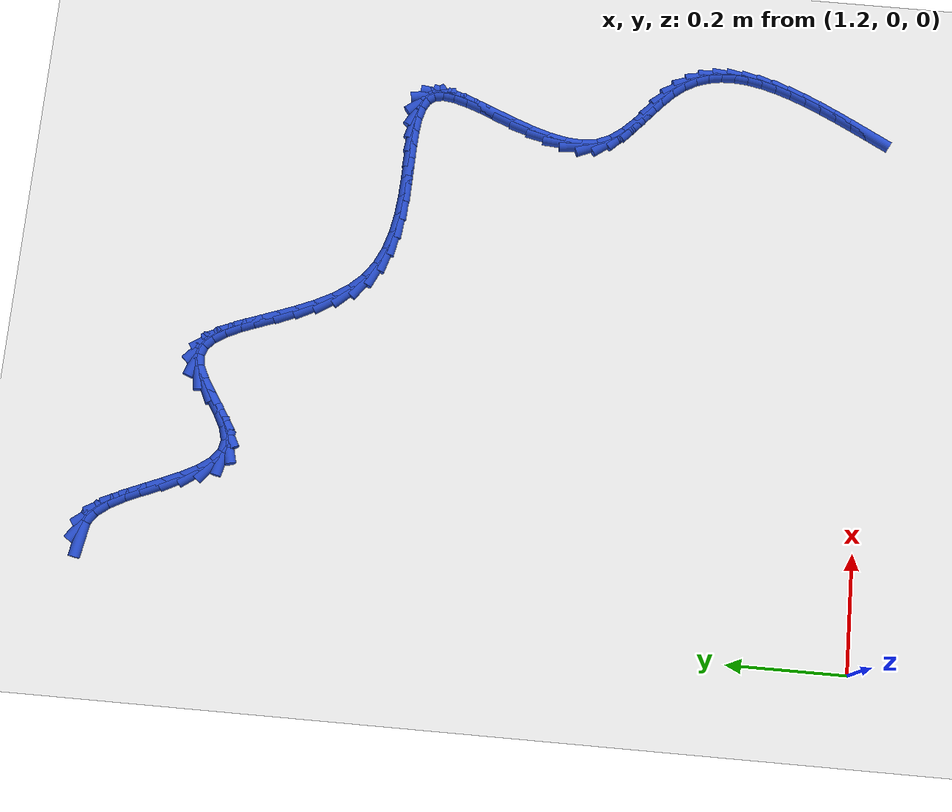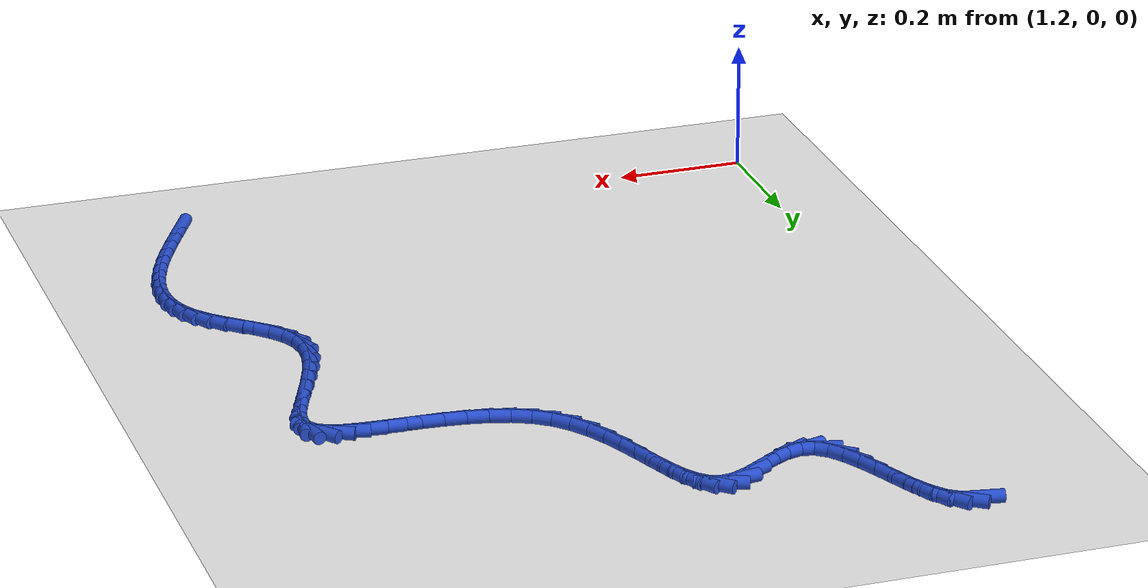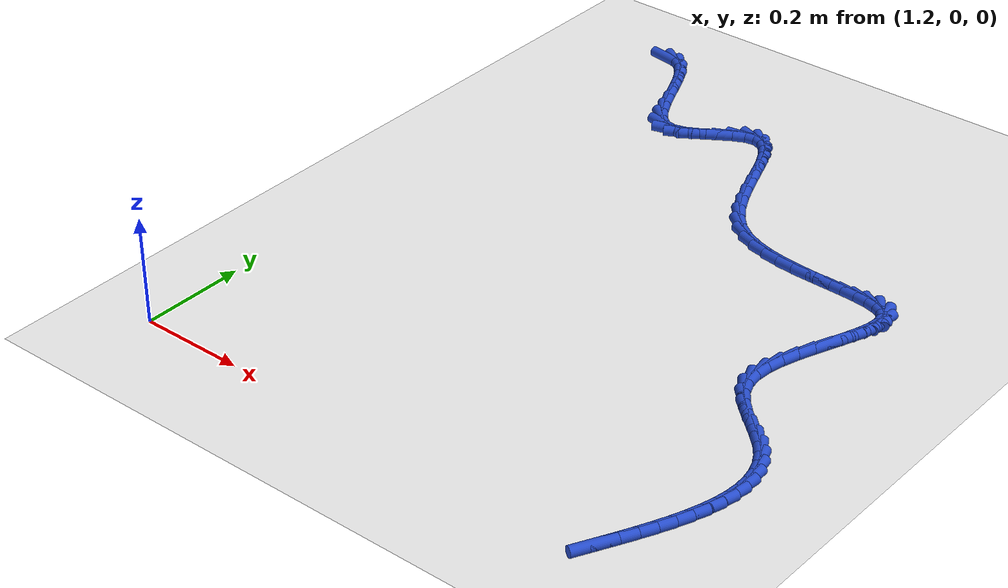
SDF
<sdf version="1.6">
 <world name="default">
  <model name="ground_plane">
   <static>1</static>
   <link name="link">
    <collision name="collision">
     <geometry><plane><normal>0 0 1</normal><size>100 100</size></plane></geometry>
     <surface><friction><ode><mu>100</mu><mu2>50</mu2></ode></friction></surface>
    </collision>
    <visual name="visual">
     <cast_shadows>0</cast_shadows>
     <geometry><plane><normal>0 0 1</normal><size>100 100</size></plane></geometry>
     <material>
      <script><uri>file://media/materials/scripts/gazebo.material</uri><name>Gazebo/WhiteGlow</name></script>
     </material>
    </visual>
   </link>
  </model>
  <model name="line">
   <link name="link_73">
    <pose>1.3183437824131954 1.2755102226449153 0.01 0 1.57 -0.16684510871647665</pose>
    <collision name="collision">
     <geometry><cylinder><radius>0.01</radius><length>0.08</length></cylinder></geometry>
    </collision>
    <visual name="visual">
     <material>
      <script><name>Gazebo/Blue</name><uri>file://media/materials/scripts/gazebo.material</uri></script>
     </material>
     <geometry><cylinder><radius>0.01</radius><length>0.08</length></cylinder></geometry>
    </visual>
   </link>
   <link name="link_74">
    <pose>1.3390339381723653 1.2720257787026057 0.01 0 1.57 -0.6121286195524225</pose>
    <collision name="collision">
     <geometry><cylinder><radius>0.01</radius><length>0.08</length></cylinder></geometry>
    </collision>
    <visual name="visual">
     <material>
      <script><name>Gazebo/Blue</name><uri>file://media/materials/scripts/gazebo.material</uri></script>
     </material>
     <geometry><cylinder><radius>0.01</radius><length>0.08</length></cylinder></geometry>
    </visual>
   </link>
   <link name="link_75">
    <pose>1.3571727798325206 1.2592906428728836 0.01 0 1.57 -0.9138117562290242</pose>
    <collision name="collision">
     <geometry><cylinder><radius>0.01</radius><length>0.08</length></cylinder></geometry>
    </collision>
    <visual name="visual">
     <material>
      <script><name>Gazebo/Blue</name><uri>file://media/materials/scripts/gazebo.material</uri></script>
     </material>
     <geometry><cylinder><radius>0.01</radius><length>0.08</length></cylinder></geometry>
    </visual>
   </link>
   <link name="link_76">
    <pose>1.3731096098489304 1.2386279285834996 0.01 0 1.57 -1.072491133559265</pose>
    <collision name="collision">
     <geometry><cylinder><radius>0.01</radius><length>0.08</length></cylinder></geometry>
    </collision>
    <visual name="visual">
     <material>
      <script><name>Gazebo/Blue</name><uri>file://media/materials/scripts/gazebo.material</uri></script>
     </material>
     <geometry><cylinder><radius>0.01</radius><length>0.08</length></cylinder></geometry>
    </visual>
   </link>
   <link name="link_77">
    <pose>1.3874601696492381 1.212253260804132 0.01 0 1.57 -1.1496458569841599</pose>
    <collision name="collision">
     <geometry><cylinder><radius>0.01</radius><length>0.08</length></cylinder></geometry>
    </collision>
    <visual name="visual">
     <material>
      <script><name>Gazebo/Blue</name><uri>file://media/materials/scripts/gazebo.material</uri></script>
     </material>
     <geometry><cylinder><radius>0.01</radius><length>0.08</length></cylinder></geometry>
    </visual>
   </link>
   <link name="link_78">
    <pose>1.4008405110723907 1.1823833043135696 0.01 0 1.57 -1.174703821423073</pose>
    <collision name="collision">
     <geometry><cylinder><radius>0.01</radius><length>0.08</length></cylinder></geometry>
    </collision>
    <visual name="visual">
     <material>
      <script><name>Gazebo/Blue</name><uri>file://media/materials/scripts/gazebo.material</uri></script>
     </material>
     <geometry><cylinder><radius>0.01</radius><length>0.08</length></cylinder></geometry>
    </visual>
   </link>
   <link name="link_79">
    <pose>1.413866685957333 1.1512347238905993 0.01 0 1.57 -1.156416395430086</pose>
    <collision name="collision">
     <geometry><cylinder><radius>0.01</radius><length>0.08</length></cylinder></geometry>
    </collision>
    <visual name="visual">
     <material>
      <script><name>Gazebo/Blue</name><uri>file://media/materials/scripts/gazebo.material</uri></script>
     </material>
     <geometry><cylinder><radius>0.01</radius><length>0.08</length></cylinder></geometry>
    </visual>
   </link>
   <link name="link_80">
    <pose>1.427154746143012 1.1210241843140096 0.01 0 1.57 -1.088460144894339</pose>
    <collision name="collision">
     <geometry><cylinder><radius>0.01</radius><length>0.08</length></cylinder></geometry>
    </collision>
    <visual name="visual">
     <material>
      <script><name>Gazebo/Blue</name><uri>file://media/materials/scripts/gazebo.material</uri></script>
     </material>
     <geometry><cylinder><radius>0.01</radius><length>0.08</length></cylinder></geometry>
    </visual>
   </link>
   <link name="link_81">
    <pose>1.4413207434683741 1.0939683503625885 0.01 0 1.57 -0.9453420537556867</pose>
    <collision name="collision">
     <geometry><cylinder><radius>0.01</radius><length>0.08</length></cylinder></geometry>
    </collision>
    <visual name="visual">
     <material>
      <script><name>Gazebo/Blue</name><uri>file://media/materials/scripts/gazebo.material</uri></script>
     </material>
     <geometry><cylinder><radius>0.01</radius><length>0.08</length></cylinder></geometry>
    </visual>
   </link>
   <link name="link_82">
    <pose>1.4569807297723654 1.0722838868151239 0.01 0 1.57 -0.6706237542996235</pose>
    <collision name="collision">
     <geometry><cylinder><radius>0.01</radius><length>0.08</length></cylinder></geometry>
    </collision>
    <visual name="visual">
     <material>
      <script><name>Gazebo/Blue</name><uri>file://media/materials/scripts/gazebo.material</uri></script>
     </material>
     <geometry><cylinder><radius>0.01</radius><length>0.08</length></cylinder></geometry>
    </visual>
   </link>
   <link name="link_83">
    <pose>1.4747507568939318 1.058187458450403 0.01 0 1.57 -0.206528503183138</pose>
    <collision name="collision">
     <geometry><cylinder><radius>0.01</radius><length>0.08</length></cylinder></geometry>
    </collision>
    <visual name="visual">
     <material>
      <script><name>Gazebo/Blue</name><uri>file://media/materials/scripts/gazebo.material</uri></script>
     </material>
     <geometry><cylinder><radius>0.01</radius><length>0.08</length></cylinder></geometry>
    </visual>
   </link>
   <link name="link_84">
    <pose>1.4952461561955788 1.0538933462703965 0.01 0 1.57 0.2603680566363444</pose>
    <collision name="collision">
     <geometry><cylinder><radius>0.01</radius><length>0.08</length></cylinder></geometry>
    </collision>
    <visual name="visual">
     <material>
      <script><name>Gazebo/Blue</name><uri>file://media/materials/scripts/gazebo.material</uri></script>
     </material>
     <geometry><cylinder><radius>0.01</radius><length>0.08</length></cylinder></geometry>
    </visual>
   </link>
   <link name="link_85">
    <pose>1.518631212050192 1.0601234919073614 0.01 0 1.57 0.4895556634043812</pose>
    <collision name="collision">
     <geometry><cylinder><radius>0.01</radius><length>0.08</length></cylinder></geometry>
    </collision>
    <visual name="visual">
     <material>
      <script><name>Gazebo/Blue</name><uri>file://media/materials/scripts/gazebo.material</uri></script>
     </material>
     <geometry><cylinder><radius>0.01</radius><length>0.08</length></cylinder></geometry>
    </visual>
   </link>
   <link name="link_86">
    <pose>1.5438492306699918 1.0735600943045391 0.01 0 1.57 0.573235820004116</pose>
    <collision name="collision">
     <geometry><cylinder><radius>0.01</radius><length>0.08</length></cylinder></geometry>
    </collision>
    <visual name="visual">
     <material>
      <script><name>Gazebo/Blue</name><uri>file://media/materials/scripts/gazebo.material</uri></script>
     </material>
     <geometry><cylinder><radius>0.01</radius><length>0.08</length></cylinder></geometry>
    </visual>
   </link>
   <link name="link_87">
    <pose>1.5696389345823032 1.09020846442144 0.01 0 1.57 0.5636792029933443</pose>
    <collision name="collision">
     <geometry><cylinder><radius>0.01</radius><length>0.08</length></cylinder></geometry>
    </collision>
    <visual name="visual">
     <material>
      <script><name>Gazebo/Blue</name><uri>file://media/materials/scripts/gazebo.material</uri></script>
     </material>
     <geometry><cylinder><radius>0.01</radius><length>0.08</length></cylinder></geometry>
    </visual>
   </link>
   <link name="link_88">
    <pose>1.5947390463144504 1.1060739132175754 0.01 0 1.57 0.44668412746929764</pose>
    <collision name="collision">
     <geometry><cylinder><radius>0.01</radius><length>0.08</length></cylinder></geometry>
    </collision>
    <visual name="visual">
     <material>
      <script><name>Gazebo/Blue</name><uri>file://media/materials/scripts/gazebo.material</uri></script>
     </material>
     <geometry><cylinder><radius>0.01</radius><length>0.08</length></cylinder></geometry>
    </visual>
   </link>
   <link name="link_89">
    <pose>1.6178882883937573 1.1171617516524555 0.01 0 1.57 0.1326840757271206</pose>
    <collision name="collision">
     <geometry><cylinder><radius>0.01</radius><length>0.08</length></cylinder></geometry>
    </collision>
    <visual name="visual">
     <material>
      <script><name>Gazebo/Blue</name><uri>file://media/materials/scripts/gazebo.material</uri></script>
     </material>
     <geometry><cylinder><radius>0.01</radius><length>0.08</length></cylinder></geometry>
    </visual>
   </link>
   <link name="link_90">
    <pose>1.6379555032477173 1.1198400874099368 0.01 0 1.57 -0.34634341337419294</pose>
    <collision name="collision">
     <geometry><cylinder><radius>0.01</radius><length>0.08</length></cylinder></geometry>
    </collision>
    <visual name="visual">
     <material>
      <script><name>Gazebo/Blue</name><uri>file://media/materials/scripts/gazebo.material</uri></script>
     </material>
     <geometry><cylinder><radius>0.01</radius><length>0.08</length></cylinder></geometry>
    </visual>
   </link>
   <link name="link_91">
    <pose>1.654965907668562 1.1137011993506476 0.01 0 1.57 -0.7532300992540406</pose>
    <collision name="collision">
     <geometry><cylinder><radius>0.01</radius><length>0.08</length></cylinder></geometry>
    </collision>
    <visual name="visual">
     <material>
      <script><name>Gazebo/Blue</name><uri>file://media/materials/scripts/gazebo.material</uri></script>
     </material>
     <geometry><cylinder><radius>0.01</radius><length>0.08</length></cylinder></geometry>
    </visual>
   </link>
   <link name="link_92">
    <pose>1.6695503910930276 1.1000260861326376 0.01 0 1.57 -0.9997450391108397</pose>
    <collision name="collision">
     <geometry><cylinder><radius>0.01</radius><length>0.08</length></cylinder></geometry>
    </collision>
    <visual name="visual">
     <material>
      <script><name>Gazebo/Blue</name><uri>file://media/materials/scripts/gazebo.material</uri></script>
     </material>
     <geometry><cylinder><radius>0.01</radius><length>0.08</length></cylinder></geometry>
    </visual>
   </link>
   <link name="link_93">
    <pose>1.6823451630224993 1.0801105796717854 0.01 0 1.57 -1.1328518529992782</pose>
    <collision name="collision">
     <geometry><cylinder><radius>0.01</radius><length>0.08</length></cylinder></geometry>
    </collision>
    <visual name="visual">
     <material>
      <script><name>Gazebo/Blue</name><uri>file://media/materials/scripts/gazebo.material</uri></script>
     </material>
     <geometry><cylinder><radius>0.01</radius><length>0.08</length></cylinder></geometry>
    </visual>
   </link>
   <link name="link_94">
    <pose>1.6939864329583612 1.0552505118839688 0.01 0 1.57 -1.1987713939651214</pose>
    <collision name="collision">
     <geometry><cylinder><radius>0.01</radius><length>0.08</length></cylinder></geometry>
    </collision>
    <visual name="visual">
     <material>
      <script><name>Gazebo/Blue</name><uri>file://media/materials/scripts/gazebo.material</uri></script>
     </material>
     <geometry><cylinder><radius>0.01</radius><length>0.08</length></cylinder></geometry>
    </visual>
   </link>
   <link name="link_95">
    <pose>1.7051104104019994 1.0267417146850681 0.01 0 1.57 -1.2214399153551372</pose>
    <collision name="collision">
     <geometry><cylinder><radius>0.01</radius><length>0.08</length></cylinder></geometry>
    </collision>
    <visual name="visual">
     <material>
      <script><name>Gazebo/Blue</name><uri>file://media/materials/scripts/gazebo.material</uri></script>
     </material>
     <geometry><cylinder><radius>0.01</radius><length>0.08</length></cylinder></geometry>
    </visual>
   </link>
   <link name="link_96">
    <pose>1.7163533048547979 0.9958800199909618 0.01 0 1.57 -1.2112434652779007</pose>
    <collision name="collision">
     <geometry><cylinder><radius>0.01</radius><length>0.08</length></cylinder></geometry>
    </collision>
    <visual name="visual">
     <material>
      <script><name>Gazebo/Blue</name><uri>file://media/materials/scripts/gazebo.material</uri></script>
     </material>
     <geometry><cylinder><radius>0.01</radius><length>0.08</length></cylinder></geometry>
    </visual>
   </link>
   <link name="link_97">
    <pose>1.7283513258181418 0.9639612597175287 0.01 0 1.57 -1.170922987585926</pose>
    <collision name="collision">
     <geometry><cylinder><radius>0.01</radius><length>0.08</length></cylinder></geometry>
    </collision>
    <visual name="visual">
     <material>
      <script><name>Gazebo/Blue</name><uri>file://media/materials/scripts/gazebo.material</uri></script>
     </material>
     <geometry><cylinder><radius>0.01</radius><length>0.08</length></cylinder></geometry>
    </visual>
   </link>
   <link name="link_98">
    <pose>1.7417406827934168 0.9322812657806477 0.01 0 1.57 -1.0980559785298039</pose>
    <collision name="collision">
     <geometry><cylinder><radius>0.01</radius><length>0.08</length></cylinder></geometry>
    </collision>
    <visual name="visual">
     <material>
      <script><name>Gazebo/Blue</name><uri>file://media/materials/scripts/gazebo.material</uri></script>
     </material>
     <geometry><cylinder><radius>0.01</radius><length>0.08</length></cylinder></geometry>
    </visual>
   </link>
   <link name="link_99">
    <pose>1.7571575852820072 0.902135870096198 0.01 0 1.57 -0.9860785388547416</pose>
    <collision name="collision">
     <geometry><cylinder><radius>0.01</radius><length>0.08</length></cylinder></geometry>
    </collision>
    <visual name="visual">
     <material>
      <script><name>Gazebo/Blue</name><uri>file://media/materials/scripts/gazebo.material</uri></script>
     </material>
     <geometry><cylinder><radius>0.01</radius><length>0.08</length></cylinder></geometry>
    </visual>
   </link>
   <link name="link_100">
    <pose>1.7752382427852975 0.8748209045800582 0.01 0 1.57 -0.8259437738433045</pose>
    <collision name="collision">
     <geometry><cylinder><radius>0.01</radius><length>0.08</length></cylinder></geometry>
    </collision>
    <visual name="visual">
     <material>
      <script><name>Gazebo/Blue</name><uri>file://media/materials/scripts/gazebo.material</uri></script>
     </material>
     <geometry><cylinder><radius>0.01</radius><length>0.08</length></cylinder></geometry>
    </visual>
   </link>
   <link name="link_101">
    <pose>1.7966188648046733 0.8516322011481078 0.01 0 1.57 -0.6222377164694277</pose>
    <collision name="collision">
     <geometry><cylinder><radius>0.01</radius><length>0.08</length></cylinder></geometry>
    </collision>
    <visual name="visual">
     <material>
      <script><name>Gazebo/Blue</name><uri>file://media/materials/scripts/gazebo.material</uri></script>
     </material>
     <geometry><cylinder><radius>0.01</radius><length>0.08</length></cylinder></geometry>
    </visual>
   </link>
   <link name="link_102">
    <pose>1.8217521417594094 0.8336042870130349 0.01 0 1.57 -0.4356061004534389</pose>
    <collision name="collision">
     <geometry><cylinder><radius>0.01</radius><length>0.08</length></cylinder></geometry>
    </collision>
    <visual name="visual">
     <material>
      <script><name>Gazebo/Blue</name><uri>file://media/materials/scripts/gazebo.material</uri></script>
     </material>
     <geometry><cylinder><radius>0.01</radius><length>0.08</length></cylinder></geometry>
    </visual>
   </link>
   <link name="link_103">
    <pose>1.85012621838497 0.8203983154542901 0.01 0 1.57 -0.2895581876682245</pose>
    <collision name="collision">
     <geometry><cylinder><radius>0.01</radius><length>0.08</length></cylinder></geometry>
    </collision>
    <visual name="visual">
     <material>
      <script><name>Gazebo/Blue</name><uri>file://media/materials/scripts/gazebo.material</uri></script>
     </material>
     <geometry><cylinder><radius>0.01</radius><length>0.08</length></cylinder></geometry>
    </visual>
   </link>
   <link name="link_104">
    <pose>1.8809134629001072 0.8112258195373112 0.01 0 1.57 -0.18110365951941726</pose>
    <collision name="collision">
     <geometry><cylinder><radius>0.01</radius><length>0.08</length></cylinder></geometry>
    </collision>
    <visual name="visual">
     <material>
      <script><name>Gazebo/Blue</name><uri>file://media/materials/scripts/gazebo.material</uri></script>
     </material>
     <geometry><cylinder><radius>0.01</radius><length>0.08</length></cylinder></geometry>
    </visual>
   </link>
   <link name="link_105">
    <pose>1.9132860621466303 0.805298074072932 0.01 0 1.57 -0.104409323608136</pose>
    <collision name="collision">
     <geometry><cylinder><radius>0.01</radius><length>0.08</length></cylinder></geometry>
    </collision>
    <visual name="visual">
     <material>
      <script><name>Gazebo/Blue</name><uri>file://media/materials/scripts/gazebo.material</uri></script>
     </material>
     <geometry><cylinder><radius>0.01</radius><length>0.08</length></cylinder></geometry>
    </visual>
   </link>
   <link name="link_106">
    <pose>1.9464162029663516 0.801826353871986 0.01 0 1.57 -0.05452627504415053</pose>
    <collision name="collision">
     <geometry><cylinder><radius>0.01</radius><length>0.08</length></cylinder></geometry>
    </collision>
    <visual name="visual">
     <material>
      <script><name>Gazebo/Blue</name><uri>file://media/materials/scripts/gazebo.material</uri></script>
     </material>
     <geometry><cylinder><radius>0.01</radius><length>0.08</length></cylinder></geometry>
    </visual>
   </link>
   <link name="link_107">
    <pose>1.9794760722010822 0.8000219337453077 0.01 0 1.57 -0.028779174864250887</pose>
    <collision name="collision">
     <geometry><cylinder><radius>0.01</radius><length>0.08</length></cylinder></geometry>
    </collision>
    <visual name="visual">
     <material>
      <script><name>Gazebo/Blue</name><uri>file://media/materials/scripts/gazebo.material</uri></script>
     </material>
     <geometry><cylinder><radius>0.01</radius><length>0.08</length></cylinder></geometry>
    </visual>
   </link>
   <link name="link_108">
    <pose>2.0116378566926305 0.7990960885037305 0.01 0 1.57 -0.02746052416291596</pose>
    <collision name="collision">
     <geometry><cylinder><radius>0.01</radius><length>0.08</length></cylinder></geometry>
    </collision>
    <visual name="visual">
     <material>
      <script><name>Gazebo/Blue</name><uri>file://media/materials/scripts/gazebo.material</uri></script>
     </material>
     <geometry><cylinder><radius>0.01</radius><length>0.08</length></cylinder></geometry>
    </visual>
   </link>
   <link name="link_109">
    <pose>2.04207374328281 0.7982600929580881 0.01 0 1.57 -0.0549929634972766</pose>
    <collision name="collision">
     <geometry><cylinder><radius>0.01</radius><length>0.08</length></cylinder></geometry>
    </collision>
    <visual name="visual">
     <material>
      <script><name>Gazebo/Blue</name><uri>file://media/materials/scripts/gazebo.material</uri></script>
     </material>
     <geometry><cylinder><radius>0.01</radius><length>0.08</length></cylinder></geometry>
    </visual>
   </link>
   <link name="link_110">
    <pose>2.06995591881343 0.7967252219192145 0.01 0 1.57 -0.12274277025162612</pose>
    <collision name="collision">
     <geometry><cylinder><radius>0.01</radius><length>0.08</length></cylinder></geometry>
    </collision>
    <visual name="visual">
     <material>
      <script><name>Gazebo/Blue</name><uri>file://media/materials/scripts/gazebo.material</uri></script>
     </material>
     <geometry><cylinder><radius>0.01</radius><length>0.08</length></cylinder></geometry>
    </visual>
   </link>
   <link name="link_111">
    <pose>2.094456570126302 0.7937027501979432 0.01 0 1.57 -0.2554320651588414</pose>
    <collision name="collision">
     <geometry><cylinder><radius>0.01</radius><length>0.08</length></cylinder></geometry>
    </collision>
    <visual name="visual">
     <material>
      <script><name>Gazebo/Blue</name><uri>file://media/materials/scripts/gazebo.material</uri></script>
     </material>
     <geometry><cylinder><radius>0.01</radius><length>0.08</length></cylinder></geometry>
    </visual>
   </link>
   <link name="link_112">
    <pose>2.114747884063236 0.7884039526051085 0.01 0 1.57 -0.5015366310365025</pose>
    <collision name="collision">
     <geometry><cylinder><radius>0.01</radius><length>0.08</length></cylinder></geometry>
    </collision>
    <visual name="visual">
     <material>
      <script><name>Gazebo/Blue</name><uri>file://media/materials/scripts/gazebo.material</uri></script>
     </material>
     <geometry><cylinder><radius>0.01</radius><length>0.08</length></cylinder></geometry>
    </visual>
   </link>
   <link name="link_113">
    <pose>2.130002047466043 0.780040103951544 0.01 0 1.57 -0.9155622875768271</pose>
    <collision name="collision">
     <geometry><cylinder><radius>0.01</radius><length>0.08</length></cylinder></geometry>
    </collision>
    <visual name="visual">
     <material>
      <script><name>Gazebo/Blue</name><uri>file://media/materials/scripts/gazebo.material</uri></script>
     </material>
     <geometry><cylinder><radius>0.01</radius><length>0.08</length></cylinder></geometry>
    </visual>
   </link>
   <link name="link_114">
    <pose>2.1393912471765337 0.7678224790480833 0.01 0 1.57 -1.3902913847849792</pose>
    <collision name="collision">
     <geometry><cylinder><radius>0.01</radius><length>0.08</length></cylinder></geometry>
    </collision>
    <visual name="visual">
     <material>
      <script><name>Gazebo/Blue</name><uri>file://media/materials/scripts/gazebo.material</uri></script>
     </material>
     <geometry><cylinder><radius>0.01</radius><length>0.08</length></cylinder></geometry>
    </visual>
   </link>
   <link name="link_115">
    <pose>2.142424585156173 0.7512006510957169 0.01 0 1.57 1.452812598707228</pose>
    <collision name="collision">
     <geometry><cylinder><radius>0.01</radius><length>0.08</length></cylinder></geometry>
    </collision>
    <visual name="visual">
     <material>
      <script><name>Gazebo/Blue</name><uri>file://media/materials/scripts/gazebo.material</uri></script>
     </material>
     <geometry><cylinder><radius>0.01</radius><length>0.08</length></cylinder></geometry>
    </visual>
   </link>
   <link name="link_116">
    <pose>2.1399819619836 0.7305937523465017 0.01 0 1.57 1.298146527217197</pose>
    <collision name="collision">
     <geometry><cylinder><radius>0.01</radius><length>0.08</length></cylinder></geometry>
    </collision>
    <visual name="visual">
     <material>
      <script><name>Gazebo/Blue</name><uri>file://media/materials/scripts/gazebo.material</uri></script>
     </material>
     <geometry><cylinder><radius>0.01</radius><length>0.08</length></cylinder></geometry>
    </visual>
   </link>
   <link name="link_117">
    <pose>2.1332918613960032 0.7066674661885893 0.01 0 1.57 1.2205758915131604</pose>
    <collision name="collision">
     <geometry><cylinder><radius>0.01</radius><length>0.08</length></cylinder></geometry>
    </collision>
    <visual name="visual">
     <material>
      <script><name>Gazebo/Blue</name><uri>file://media/materials/scripts/gazebo.material</uri></script>
     </material>
     <geometry><cylinder><radius>0.01</radius><length>0.08</length></cylinder></geometry>
    </visual>
   </link>
   <link name="link_118">
    <pose>2.123582767193188 0.6800874760544177 0.01 0 1.57 1.1881071242338588</pose>
    <collision name="collision">
     <geometry><cylinder><radius>0.01</radius><length>0.08</length></cylinder></geometry>
    </collision>
    <visual name="visual">
     <material>
      <script><name>Gazebo/Blue</name><uri>file://media/materials/scripts/gazebo.material</uri></script>
     </material>
     <geometry><cylinder><radius>0.01</radius><length>0.08</length></cylinder></geometry>
    </visual>
   </link>
   <link name="link_119">
    <pose>2.112083163174957 0.6515194653764261 0.01 0 1.57 1.1872511885133374</pose>
    <collision name="collision">
     <geometry><cylinder><radius>0.01</radius><length>0.08</length></cylinder></geometry>
    </collision>
    <visual name="visual">
     <material>
      <script><name>Gazebo/Blue</name><uri>file://media/materials/scripts/gazebo.material</uri></script>
     </material>
     <geometry><cylinder><radius>0.01</radius><length>0.08</length></cylinder></geometry>
    </visual>
   </link>
   <link name="link_120">
    <pose>2.1000215331411143 0.6216291175870532 0.01 0 1.57 1.2137474518360485</pose>
    <collision name="collision">
     <geometry><cylinder><radius>0.01</radius><length>0.08</length></cylinder></geometry>
    </collision>
    <visual name="visual">
     <material>
      <script><name>Gazebo/Blue</name><uri>file://media/materials/scripts/gazebo.material</uri></script>
     </material>
     <geometry><cylinder><radius>0.01</radius><length>0.08</length></cylinder></geometry>
    </visual>
   </link>
   <link name="link_121">
    <pose>2.0886263608914653 0.5910821161187378 0.01 0 1.57 1.269191362193185</pose>
    <collision name="collision">
     <geometry><cylinder><radius>0.01</radius><length>0.08</length></cylinder></geometry>
    </collision>
    <visual name="visual">
     <material>
      <script><name>Gazebo/Blue</name><uri>file://media/materials/scripts/gazebo.material</uri></script>
     </material>
     <geometry><cylinder><radius>0.01</radius><length>0.08</length></cylinder></geometry>
    </visual>
   </link>
   <link name="link_122">
    <pose>2.0791261302258137 0.560544144403919 0.01 0 1.57 1.3604223212297881</pose>
    <collision name="collision">
     <geometry><cylinder><radius>0.01</radius><length>0.08</length></cylinder></geometry>
    </collision>
    <visual name="visual">
     <material>
      <script><name>Gazebo/Blue</name><uri>file://media/materials/scripts/gazebo.material</uri></script>
     </material>
     <geometry><cylinder><radius>0.01</radius><length>0.08</length></cylinder></geometry>
    </visual>
   </link>
   <link name="link_123">
    <pose>2.0727493249439646 0.5306808858750355 0.01 0 1.57 1.4999231929225816</pose>
    <collision name="collision">
     <geometry><cylinder><radius>0.01</radius><length>0.08</length></cylinder></geometry>
    </collision>
    <visual name="visual">
     <material>
      <script><name>Gazebo/Blue</name><uri>file://media/materials/scripts/gazebo.material</uri></script>
     </material>
     <geometry><cylinder><radius>0.01</radius><length>0.08</length></cylinder></geometry>
    </visual>
   </link>
   <link name="link_124">
    <pose>2.0707244288457205 0.5021580239645265 0.01 0 1.57 -1.4375065454873666</pose>
    <collision name="collision">
     <geometry><cylinder><radius>0.01</radius><length>0.08</length></cylinder></geometry>
    </collision>
    <visual name="visual">
     <material>
      <script><name>Gazebo/Blue</name><uri>file://media/materials/scripts/gazebo.material</uri></script>
     </material>
     <geometry><cylinder><radius>0.01</radius><length>0.08</length></cylinder></geometry>
    </visual>
   </link>
   <link name="link_125">
    <pose>2.074279925730887 0.4756412421048299 0.01 0 1.57 -1.1709242210565063</pose>
    <collision name="collision">
     <geometry><cylinder><radius>0.01</radius><length>0.08</length></cylinder></geometry>
    </collision>
    <visual name="visual">
     <material>
      <script><name>Gazebo/Blue</name><uri>file://media/materials/scripts/gazebo.material</uri></script>
     </material>
     <geometry><cylinder><radius>0.01</radius><length>0.08</length></cylinder></geometry>
    </visual>
   </link>
   <link name="link_126">
    <pose>2.084401230040343 0.4516935676426693 0.01 0 1.57 -0.9420755934616672</pose>
    <collision name="collision">
     <geometry><cylinder><radius>0.01</radius><length>0.08</length></cylinder></geometry>
    </collision>
    <visual name="visual">
     <material>
      <script><name>Gazebo/Blue</name><uri>file://media/materials/scripts/gazebo.material</uri></script>
     </material>
     <geometry><cylinder><radius>0.01</radius><length>0.08</length></cylinder></geometry>
    </visual>
   </link>
   <link name="link_127">
    <pose>2.100133313930665 0.4300585161181563 0.01 0 1.57 -0.7984092568251079</pose>
    <collision name="collision">
     <geometry><cylinder><radius>0.01</radius><length>0.08</length></cylinder></geometry>
    </collision>
    <visual name="visual">
     <material>
      <script><name>Gazebo/Blue</name><uri>file://media/materials/scripts/gazebo.material</uri></script>
     </material>
     <geometry><cylinder><radius>0.01</radius><length>0.08</length></cylinder></geometry>
    </visual>
   </link>
   <link name="link_128">
    <pose>2.1195917066347474 0.41008706913432474 0.01 0 1.57 -0.7274540353711207</pose>
    <collision name="collision">
     <geometry><cylinder><radius>0.01</radius><length>0.08</length></cylinder></geometry>
    </collision>
    <visual name="visual">
     <material>
      <script><name>Gazebo/Blue</name><uri>file://media/materials/scripts/gazebo.material</uri></script>
     </material>
     <geometry><cylinder><radius>0.01</radius><length>0.08</length></cylinder></geometry>
    </visual>
   </link>
   <link name="link_129">
    <pose>2.1408861096604017 0.39112774705660874 0.01 0 1.57 -0.7191918997910498</pose>
    <collision name="collision">
     <geometry><cylinder><radius>0.01</radius><length>0.08</length></cylinder></geometry>
    </collision>
    <visual name="visual">
     <material>
      <script><name>Gazebo/Blue</name><uri>file://media/materials/scripts/gazebo.material</uri></script>
     </material>
     <geometry><cylinder><radius>0.01</radius><length>0.08</length></cylinder></geometry>
    </visual>
   </link>
   <link name="link_130">
    <pose>2.162126224515439 0.3725290702504425 0.01 0 1.57 -0.7747656819414553</pose>
    <collision name="collision">
     <geometry><cylinder><radius>0.01</radius><length>0.08</length></cylinder></geometry>
    </collision>
    <visual name="visual">
     <material>
      <script><name>Gazebo/Blue</name><uri>file://media/materials/scripts/gazebo.material</uri></script>
     </material>
     <geometry><cylinder><radius>0.01</radius><length>0.08</length></cylinder></geometry>
    </visual>
   </link>
   <link name="link_131">
    <pose>2.181421752707672 0.3536395590812604 0.01 0 1.57 -0.903213475266581</pose>
    <collision name="collision">
     <geometry><cylinder><radius>0.01</radius><length>0.08</length></cylinder></geometry>
    </collision>
    <visual name="visual">
     <material>
      <script><name>Gazebo/Blue</name><uri>file://media/materials/scripts/gazebo.material</uri></script>
     </material>
     <geometry><cylinder><radius>0.01</radius><length>0.08</length></cylinder></geometry>
    </visual>
   </link>
   <link name="link_132">
    <pose>2.1970200262414723 0.33385301603945305 0.01 0 1.57 -1.0681966047662395</pose>
    <collision name="collision">
     <geometry><cylinder><radius>0.01</radius><length>0.08</length></cylinder></geometry>
    </collision>
    <visual name="visual">
     <material>
      <script><name>Gazebo/Blue</name><uri>file://media/materials/scripts/gazebo.material</uri></script>
     </material>
     <geometry><cylinder><radius>0.01</radius><length>0.08</length></cylinder></geometry>
    </visual>
   </link>
   <link name="link_133">
    <pose>2.208484606726856 0.31299629933317735 0.01 0 1.57 -1.2351392739128026</pose>
    <collision name="collision">
     <geometry><cylinder><radius>0.01</radius><length>0.08</length></cylinder></geometry>
    </collision>
    <visual name="visual">
     <material>
      <script><name>Gazebo/Blue</name><uri>file://media/materials/scripts/gazebo.material</uri></script>
     </material>
     <geometry><cylinder><radius>0.01</radius><length>0.08</length></cylinder></geometry>
    </visual>
   </link>
   <link name="link_134">
    <pose>2.2161104325672754 0.29113689912483165 0.01 0 1.57 -1.3932435516901798</pose>
    <collision name="collision">
     <geometry><cylinder><radius>0.01</radius><length>0.08</length></cylinder></geometry>
    </collision>
    <visual name="visual">
     <material>
      <script><name>Gazebo/Blue</name><uri>file://media/materials/scripts/gazebo.material</uri></script>
     </material>
     <geometry><cylinder><radius>0.01</radius><length>0.08</length></cylinder></geometry>
    </visual>
   </link>
   <link name="link_135">
    <pose>2.220200285826971 0.2683448862376202 0.01 0 1.57 -1.53459659597406</pose>
    <collision name="collision">
     <geometry><cylinder><radius>0.01</radius><length>0.08</length></cylinder></geometry>
    </collision>
    <visual name="visual">
     <material>
      <script><name>Gazebo/Blue</name><uri>file://media/materials/scripts/gazebo.material</uri></script>
     </material>
     <geometry><cylinder><radius>0.01</radius><length>0.08</length></cylinder></geometry>
    </visual>
   </link>
   <link name="link_136">
    <pose>2.2210569485701877 0.24469033149474723 0.01 0 1.57 1.4861728132409802</pose>
    <collision name="collision">
     <geometry><cylinder><radius>0.01</radius><length>0.08</length></cylinder></geometry>
    </collision>
    <visual name="visual">
     <material>
      <script><name>Gazebo/Blue</name><uri>file://media/materials/scripts/gazebo.material</uri></script>
     </material>
     <geometry><cylinder><radius>0.01</radius><length>0.08</length></cylinder></geometry>
    </visual>
   </link>
   <link name="link_137">
    <pose>2.2189832028611636 0.2202433057194164 0.01 0 1.57 1.3861353108180545</pose>
    <collision name="collision">
     <geometry><cylinder><radius>0.01</radius><length>0.08</length></cylinder></geometry>
    </collision>
    <visual name="visual">
     <material>
      <script><name>Gazebo/Blue</name><uri>file://media/materials/scripts/gazebo.material</uri></script>
     </material>
     <geometry><cylinder><radius>0.01</radius><length>0.08</length></cylinder></geometry>
    </visual>
   </link>
   <link name="link_138">
    <pose>2.214281830764143 0.19507387973483192 0.01 0 1.57 1.3051240057744342</pose>
    <collision name="collision">
     <geometry><cylinder><radius>0.01</radius><length>0.08</length></cylinder></geometry>
    </collision>
    <visual name="visual">
     <material>
      <script><name>Gazebo/Blue</name><uri>file://media/materials/scripts/gazebo.material</uri></script>
     </material>
     <geometry><cylinder><radius>0.01</radius><length>0.08</length></cylinder></geometry>
    </visual>
   </link>
   <link name="link_139">
    <pose>2.2072556143433677 0.16925212436419762 0.01 0 1.57 1.2406523663186217</pose>
    <collision name="collision">
     <geometry><cylinder><radius>0.01</radius><length>0.08</length></cylinder></geometry>
    </collision>
    <visual name="visual">
     <material>
      <script><name>Gazebo/Blue</name><uri>file://media/materials/scripts/gazebo.material</uri></script>
     </material>
     <geometry><cylinder><radius>0.01</radius><length>0.08</length></cylinder></geometry>
    </visual>
   </link>
   <link name="link_140">
    <pose>2.198207335663079 0.14284811043071802 0.01 0 1.57 1.1902554174936648</pose>
    <collision name="collision">
     <geometry><cylinder><radius>0.01</radius><length>0.08</length></cylinder></geometry>
    </collision>
    <visual name="visual">
     <material>
      <script><name>Gazebo/Blue</name><uri>file://media/materials/scripts/gazebo.material</uri></script>
     </material>
     <geometry><cylinder><radius>0.01</radius><length>0.08</length></cylinder></geometry>
    </visual>
   </link>
   <link name="link_141">
    <pose>2.1874397767875196 0.11593190875759626 0.01 0 1.57 1.1518151561882493</pose>
    <collision name="collision">
     <geometry><cylinder><radius>0.01</radius><length>0.08</length></cylinder></geometry>
    </collision>
    <visual name="visual">
     <material>
      <script><name>Gazebo/Blue</name><uri>file://media/materials/scripts/gazebo.material</uri></script>
     </material>
     <geometry><cylinder><radius>0.01</radius><length>0.08</length></cylinder></geometry>
    </visual>
   </link>
   <link name="link_142">
    <pose>2.1752557197809304 0.08857359016803659 0.01 0 1.57 1.1236516297654864</pose>
    <collision name="collision">
     <geometry><cylinder><radius>0.01</radius><length>0.08</length></cylinder></geometry>
    </collision>
    <visual name="visual">
     <material>
      <script><name>Gazebo/Blue</name><uri>file://media/materials/scripts/gazebo.material</uri></script>
     </material>
     <geometry><cylinder><radius>0.01</radius><length>0.08</length></cylinder></geometry>
    </visual>
   </link>
   <link name="link_143">
    <pose>2.1619579467075543 0.06084322548524314 0.01 0 1.57 1.1045113394677937</pose>
    <collision name="collision">
     <geometry><cylinder><radius>0.01</radius><length>0.08</length></cylinder></geometry>
    </collision>
    <visual name="visual">
     <material>
      <script><name>Gazebo/Blue</name><uri>file://media/materials/scripts/gazebo.material</uri></script>
     </material>
     <geometry><cylinder><radius>0.01</radius><length>0.08</length></cylinder></geometry>
    </visual>
   </link>
   <link name="link_144">
    <pose>2.147849239631633 0.0328108855324199 0.01 0 1.57 1.093522898827604</pose>
    <collision name="collision">
     <geometry><cylinder><radius>0.01</radius><length>0.08</length></cylinder></geometry>
    </collision>
    <visual name="visual">
     <material>
      <script><name>Gazebo/Blue</name><uri>file://media/materials/scripts/gazebo.material</uri></script>
     </material>
     <geometry><cylinder><radius>0.01</radius><length>0.08</length></cylinder></geometry>
    </visual>
   </link>
   <link name="link_145">
    <pose>2.1332323806174087 0.00454664113277075 0.01 0 1.57 1.090151537832209</pose>
    <collision name="collision">
     <geometry><cylinder><radius>0.01</radius><length>0.08</length></cylinder></geometry>
    </collision>
    <visual name="visual">
     <material>
      <script><name>Gazebo/Blue</name><uri>file://media/materials/scripts/gazebo.material</uri></script>
     </material>
     <geometry><cylinder><radius>0.01</radius><length>0.08</length></cylinder></geometry>
    </visual>
   </link>
  </model>
 </world>
</sdf>
